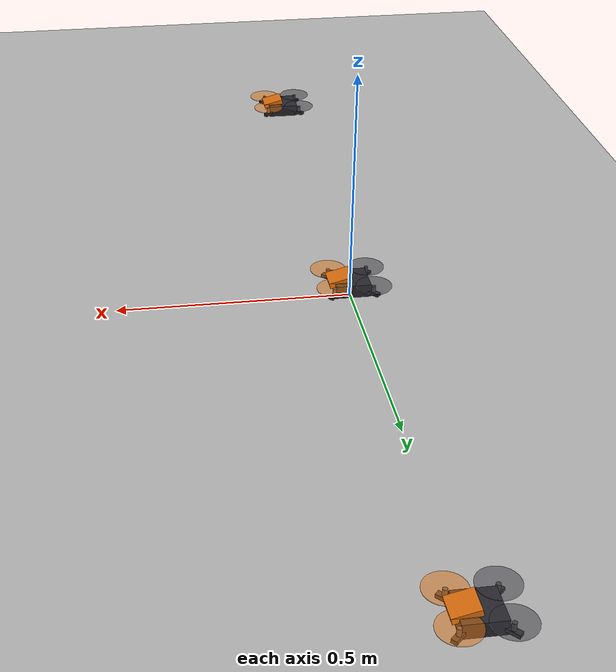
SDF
<?xml version="1.0"?>
<!-- Three-drone swarm world (127.0.0.2 / .3 / .4) for TelloSwarm scripts.
     SPDX-License-Identifier: MIT -->
<sdf version="1.9">
  <world name="swarm_3">
    <physics name="fast" type="ignored">
      <max_step_size>0.001</max_step_size>
      <real_time_factor>4</real_time_factor>
    </physics>
    <plugin filename="gz-sim-physics-system" name="gz::sim::systems::Physics"/>
    <plugin filename="gz-sim-user-commands-system" name="gz::sim::systems::UserCommands"/>
    <plugin filename="gz-sim-scene-broadcaster-system" name="gz::sim::systems::SceneBroadcaster"/>

    <gravity>0 0 -9.80665</gravity>

    <model name="ground">
      <static>true</static>
      <link name="ground_link">
        <collision name="c">
          <geometry><plane><normal>0 0 1</normal><size>50 50</size></plane></geometry>
        </collision>
        <visual name="v">
          <geometry><plane><normal>0 0 1</normal><size>50 50</size></plane></geometry>
          <material><ambient>0.6 0.6 0.6 1</ambient><diffuse>0.7 0.7 0.7 1</diffuse></material>
        </visual>
      </link>
    </model>

    <include>
      <uri>model://stratosdrone</uri><name>drone_1</name><pose>0 -1 0.025 0 0 0</pose>
      <plugin filename="StratosFcSystem" name="stratos::StratosFcSystem">
        <bind_ip>127.0.0.2</bind_ip><seed>7</seed>
      </plugin>
    </include>
    <include>
      <uri>model://stratosdrone</uri><name>drone_2</name><pose>0 0 0.025 0 0 0</pose>
      <plugin filename="StratosFcSystem" name="stratos::StratosFcSystem">
        <bind_ip>127.0.0.3</bind_ip><seed>11</seed>
      </plugin>
    </include>
    <include>
      <uri>model://stratosdrone</uri><name>drone_3</name><pose>0 1 0.025 0 0 0</pose>
      <plugin filename="StratosFcSystem" name="stratos::StratosFcSystem">
        <bind_ip>127.0.0.4</bind_ip><seed>13</seed>
      </plugin>
    </include>
  </world>
</sdf>

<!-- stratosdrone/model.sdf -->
<!-- STRATOSDRONE rigid-body model. Mass/inertia mirror fc_core/test/sil_plant.c
     (the host SIL plant) so simulation results transfer. Body frame FLU.
     SPDX-License-Identifier: MIT -->
<sdf version="1.9">
  <model name="stratosdrone">
    <link name="base_link">
      <inertial>
        <mass>0.092</mass>
        <inertia>
          <ixx>1.1e-4</ixx><iyy>1.1e-4</iyy><izz>2.0e-4</izz>
          <ixy>0</ixy><ixz>0</ixz><iyz>0</iyz>
        </inertia>
      </inertial>

      <collision name="hull">
        <geometry><box><size>0.13 0.13 0.041</size></box></geometry>
        <surface>
          <friction><ode><mu>0.8</mu><mu2>0.8</mu2></ode></friction>
        </surface>
      </collision>

      <visual name="body">
        <pose>0 0 0.004 0 0 0</pose>
        <geometry><box><size>0.075 0.075 0.028</size></box></geometry>
        <material><ambient>0.15 0.15 0.18 1</ambient><diffuse>0.15 0.15 0.18 1</diffuse></material>
      </visual>
      <visual name="canopy">
        <pose>0.025 0 0.02 0 0.25 0</pose>
        <geometry><box><size>0.05 0.05 0.012</size></box></geometry>
        <material><ambient>0.9 0.45 0.05 1</ambient><diffuse>0.9 0.45 0.05 1</diffuse></material>
      </visual>
      <visual name="battery">
        <pose>-0.01 0 -0.014 0 0 0</pose>
        <geometry><box><size>0.055 0.026 0.013</size></box></geometry>
        <material><ambient>0.1 0.1 0.1 1</ambient><diffuse>0.1 0.1 0.1 1</diffuse></material>
      </visual>

      <!-- arms + motors + prop disks at the four 41.7 mm offsets -->
      <visual name="arm_fr"><pose>0.0295 -0.0295 0 0 0 -0.785</pose>
        <geometry><box><size>0.062 0.011 0.007</size></box></geometry>
        <material><ambient>0.2 0.2 0.22 1</ambient><diffuse>0.2 0.2 0.22 1</diffuse></material></visual>
      <visual name="arm_br"><pose>-0.0295 -0.0295 0 0 0 0.785</pose>
        <geometry><box><size>0.062 0.011 0.007</size></box></geometry>
        <material><ambient>0.2 0.2 0.22 1</ambient><diffuse>0.2 0.2 0.22 1</diffuse></material></visual>
      <visual name="arm_bl"><pose>-0.0295 0.0295 0 0 0 -0.785</pose>
        <geometry><box><size>0.062 0.011 0.007</size></box></geometry>
        <material><ambient>0.2 0.2 0.22 1</ambient><diffuse>0.2 0.2 0.22 1</diffuse></material></visual>
      <visual name="arm_fl"><pose>0.0295 0.0295 0 0 0 0.785</pose>
        <geometry><box><size>0.062 0.011 0.007</size></box></geometry>
        <material><ambient>0.2 0.2 0.22 1</ambient><diffuse>0.2 0.2 0.22 1</diffuse></material></visual>

      <visual name="motor_fr"><pose>0.0417 -0.0417 0.008 0 0 0</pose>
        <geometry><cylinder><radius>0.00425</radius><length>0.02</length></cylinder></geometry>
        <material><ambient>0.35 0.35 0.38 1</ambient><diffuse>0.35 0.35 0.38 1</diffuse></material></visual>
      <visual name="motor_br"><pose>-0.0417 -0.0417 0.008 0 0 0</pose>
        <geometry><cylinder><radius>0.00425</radius><length>0.02</length></cylinder></geometry>
        <material><ambient>0.35 0.35 0.38 1</ambient><diffuse>0.35 0.35 0.38 1</diffuse></material></visual>
      <visual name="motor_bl"><pose>-0.0417 0.0417 0.008 0 0 0</pose>
        <geometry><cylinder><radius>0.00425</radius><length>0.02</length></cylinder></geometry>
        <material><ambient>0.35 0.35 0.38 1</ambient><diffuse>0.35 0.35 0.38 1</diffuse></material></visual>
      <visual name="motor_fl"><pose>0.0417 0.0417 0.008 0 0 0</pose>
        <geometry><cylinder><radius>0.00425</radius><length>0.02</length></cylinder></geometry>
        <material><ambient>0.35 0.35 0.38 1</ambient><diffuse>0.35 0.35 0.38 1</diffuse></material></visual>

      <visual name="prop_fr"><pose>0.0417 -0.0417 0.0185 0 0 0</pose>
        <geometry><cylinder><radius>0.0381</radius><length>0.002</length></cylinder></geometry>
        <material><ambient>0.9 0.45 0.05 0.5</ambient><diffuse>0.9 0.45 0.05 0.5</diffuse></material>
        <transparency>0.45</transparency></visual>
      <visual name="prop_br"><pose>-0.0417 -0.0417 0.0185 0 0 0</pose>
        <geometry><cylinder><radius>0.0381</radius><length>0.002</length></cylinder></geometry>
        <material><ambient>0.2 0.2 0.22 0.5</ambient><diffuse>0.2 0.2 0.22 0.5</diffuse></material>
        <transparency>0.45</transparency></visual>
      <visual name="prop_bl"><pose>-0.0417 0.0417 0.0185 0 0 0</pose>
        <geometry><cylinder><radius>0.0381</radius><length>0.002</length></cylinder></geometry>
        <material><ambient>0.2 0.2 0.22 0.5</ambient><diffuse>0.2 0.2 0.22 0.5</diffuse></material>
        <transparency>0.45</transparency></visual>
      <visual name="prop_fl"><pose>0.0417 0.0417 0.0185 0 0 0</pose>
        <geometry><cylinder><radius>0.0381</radius><length>0.002</length></cylinder></geometry>
        <material><ambient>0.9 0.45 0.05 0.5</ambient><diffuse>0.9 0.45 0.05 0.5</diffuse></material>
        <transparency>0.45</transparency></visual>
    </link>
  </model>
</sdf>
